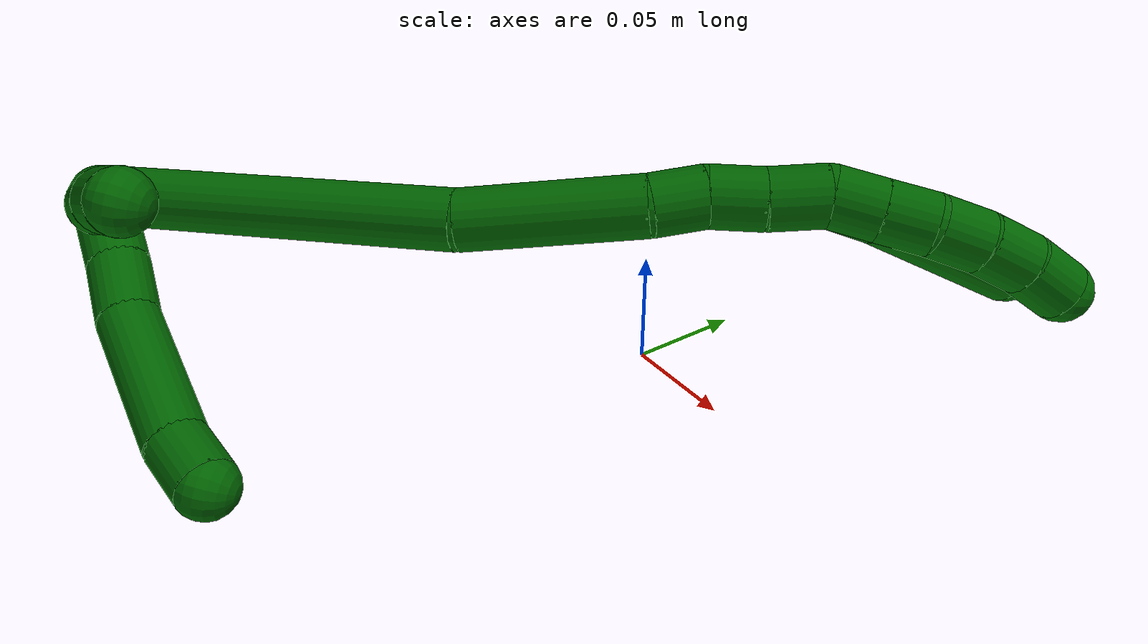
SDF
<sdf version="1.7">
 <world name="default">
  <model name="6">
   <static>0</static>
   <link name="6">
    <collision name="collision-cylinder-e_1_2_8">
     <pose>-0.000936 -0.014423 0.010518 0.940723 -0.052394 -0.026643</pose>
     <geometry><cylinder><radius>0.0125</radius><length>0.03575</length></cylinder></geometry>
     <surface>
      <friction><ode><mu>1.16</mu><mu2>1.16</mu2><slip1>0</slip1><slip2>0</slip2></ode></friction>
      <contact><ode><kp>1e+06</kp><kd>1</kd><max_vel>0</max_vel><min_depth>0.001</min_depth></ode></contact>
     </surface>
    </collision>
    <visual name="visual-cylinder-e_1_2_8">
     <pose>-0.000936 -0.014423 0.010518 0.940723 -0.052394 -0.026643</pose>
     <geometry><cylinder><radius>0.0125</radius><length>0.03575</length></cylinder></geometry>
     <material><ambient>0 0.392157 0.003922 1</ambient></material>
    </visual>
    <collision name="collision-cylinder-e_2_8_9">
     <pose>-0.003807 -0.040102 0.02871 0.972373 -0.141082 -0.074651</pose>
     <geometry><cylinder><radius>0.0125</radius><length>0.02752</length></cylinder></geometry>
     <surface>
      <friction><ode><mu>1.16</mu><mu2>1.16</mu2><slip1>0</slip1><slip2>0</slip2></ode></friction>
      <contact><ode><kp>1e+06</kp><kd>1</kd><max_vel>0</max_vel><min_depth>0.001</min_depth></ode></contact>
     </surface>
    </collision>
    <visual name="visual-cylinder-e_2_8_9">
     <pose>-0.003807 -0.040102 0.02871 0.972373 -0.141082 -0.074651</pose>
     <geometry><cylinder><radius>0.0125</radius><length>0.02752</length></cylinder></geometry>
     <material><ambient>0 0.392157 0.003922 1</ambient></material>
    </visual>
    <collision name="collision-cylinder-e_3_9_10">
     <pose>-0.012258 -0.073803 0.05725 0.821862 -0.209515 -0.091565</pose>
     <geometry><cylinder><radius>0.0125</radius><length>0.062663</length></cylinder></geometry>
     <surface>
      <friction><ode><mu>1.16</mu><mu2>1.16</mu2><slip1>0</slip1><slip2>0</slip2></ode></friction>
      <contact><ode><kp>1e+06</kp><kd>1</kd><max_vel>0</max_vel><min_depth>0.001</min_depth></ode></contact>
     </surface>
    </collision>
    <visual name="visual-cylinder-e_3_9_10">
     <pose>-0.012258 -0.073803 0.05725 0.821862 -0.209515 -0.091565</pose>
     <geometry><cylinder><radius>0.0125</radius><length>0.062663</length></cylinder></geometry>
     <material><ambient>0 0.392157 0.003922 1</ambient></material>
    </visual>
    <collision name="collision-cylinder-e_4_10_6">
     <pose>-0.022521 -0.102942 0.087389 0.625154 -0.316585 -0.103083</pose>
     <geometry><cylinder><radius>0.0125</radius><length>0.024067</length></cylinder></geometry>
     <surface>
      <friction><ode><mu>1.16</mu><mu2>1.16</mu2><slip1>0</slip1><slip2>0</slip2></ode></friction>
      <contact><ode><kp>1e+06</kp><kd>1</kd><max_vel>0</max_vel><min_depth>0.001</min_depth></ode></contact>
     </surface>
    </collision>
    <visual name="visual-cylinder-e_4_10_6">
     <pose>-0.022521 -0.102942 0.087389 0.625154 -0.316585 -0.103083</pose>
     <geometry><cylinder><radius>0.0125</radius><length>0.024067</length></cylinder></geometry>
     <material><ambient>0 0.392157 0.003922 1</ambient></material>
    </visual>
    <collision name="collision-cylinder-e_1_2_11">
     <pose>-0.008622 -0.00592 0.004622 0.907923 -0.854211 -0.437061</pose>
     <geometry><cylinder><radius>0.0125</radius><length>0.022869</length></cylinder></geometry>
     <surface>
      <friction><ode><mu>1.16</mu><mu2>1.16</mu2><slip1>0</slip1><slip2>0</slip2></ode></friction>
      <contact><ode><kp>1e+06</kp><kd>1</kd><max_vel>0</max_vel><min_depth>0.001</min_depth></ode></contact>
     </surface>
    </collision>
    <visual name="visual-cylinder-e_1_2_11">
     <pose>-0.008622 -0.00592 0.004622 0.907923 -0.854211 -0.437061</pose>
     <geometry><cylinder><radius>0.0125</radius><length>0.022869</length></cylinder></geometry>
     <material><ambient>0 0.392157 0.003922 1</ambient></material>
    </visual>
    <collision name="collision-cylinder-e_2_11_12">
     <pose>-0.03842 -0.01986 0.021101 0.594692 -0.976339 -0.322625</pose>
     <geometry><cylinder><radius>0.0125</radius><length>0.051119</length></cylinder></geometry>
     <surface>
      <friction><ode><mu>1.16</mu><mu2>1.16</mu2><slip1>0</slip1><slip2>0</slip2></ode></friction>
      <contact><ode><kp>1e+06</kp><kd>1</kd><max_vel>0</max_vel><min_depth>0.001</min_depth></ode></contact>
     </surface>
    </collision>
    <visual name="visual-cylinder-e_2_11_12">
     <pose>-0.03842 -0.01986 0.021101 0.594692 -0.976339 -0.322625</pose>
     <geometry><cylinder><radius>0.0125</radius><length>0.051119</length></cylinder></geometry>
     <material><ambient>0 0.392157 0.003922 1</ambient></material>
    </visual>
    <collision name="collision-cylinder-e_3_12_5">
     <pose>-0.069612 -0.031855 0.040238 0.499827 -0.879205 -0.238942</pose>
     <geometry><cylinder><radius>0.0125</radius><length>0.026012</length></cylinder></geometry>
     <surface>
      <friction><ode><mu>1.16</mu><mu2>1.16</mu2><slip1>0</slip1><slip2>0</slip2></ode></friction>
      <contact><ode><kp>1e+06</kp><kd>1</kd><max_vel>0</max_vel><min_depth>0.001</min_depth></ode></contact>
     </surface>
    </collision>
    <visual name="visual-cylinder-e_3_12_5">
     <pose>-0.069612 -0.031855 0.040238 0.499827 -0.879205 -0.238942</pose>
     <geometry><cylinder><radius>0.0125</radius><length>0.026012</length></cylinder></geometry>
     <material><ambient>0 0.392157 0.003922 1</ambient></material>
    </visual>
    <collision name="collision-cylinder-e_1_2_13">
     <pose>-0.019462 0.005731 0.076115 -0.075154 -0.249648 0.009434</pose>
     <geometry><cylinder><radius>0.0125</radius><length>0.157544</length></cylinder></geometry>
     <surface>
      <friction><ode><mu>1.16</mu><mu2>1.16</mu2><slip1>0</slip1><slip2>0</slip2></ode></friction>
      <contact><ode><kp>1e+06</kp><kd>1</kd><max_vel>0</max_vel><min_depth>0.001</min_depth></ode></contact>
     </surface>
    </collision>
    <visual name="visual-cylinder-e_1_2_13">
     <pose>-0.019462 0.005731 0.076115 -0.075154 -0.249648 0.009434</pose>
     <geometry><cylinder><radius>0.0125</radius><length>0.157544</length></cylinder></geometry>
     <material><ambient>0 0.392157 0.003922 1</ambient></material>
    </visual>
    <collision name="collision-cylinder-e_2_13_14">
     <pose>-0.046622 0.020942 0.187295 -0.264022 -0.208835 0.027829</pose>
     <geometry><cylinder><radius>0.0125</radius><length>0.074262</length></cylinder></geometry>
     <surface>
      <friction><ode><mu>1.16</mu><mu2>1.16</mu2><slip1>0</slip1><slip2>0</slip2></ode></friction>
      <contact><ode><kp>1e+06</kp><kd>1</kd><max_vel>0</max_vel><min_depth>0.001</min_depth></ode></contact>
     </surface>
    </collision>
    <visual name="visual-cylinder-e_2_13_14">
     <pose>-0.046622 0.020942 0.187295 -0.264022 -0.208835 0.027829</pose>
     <geometry><cylinder><radius>0.0125</radius><length>0.074262</length></cylinder></geometry>
     <material><ambient>0 0.392157 0.003922 1</ambient></material>
    </visual>
    <collision name="collision-cylinder-e_3_14_15">
     <pose>-0.055401 0.034922 0.232306 -0.425038 -0.098708 0.021315</pose>
     <geometry><cylinder><radius>0.0125</radius><length>0.021939</length></cylinder></geometry>
     <surface>
      <friction><ode><mu>1.16</mu><mu2>1.16</mu2><slip1>0</slip1><slip2>0</slip2></ode></friction>
      <contact><ode><kp>1e+06</kp><kd>1</kd><max_vel>0</max_vel><min_depth>0.001</min_depth></ode></contact>
     </surface>
    </collision>
    <visual name="visual-cylinder-e_3_14_15">
     <pose>-0.055401 0.034922 0.232306 -0.425038 -0.098708 0.021315</pose>
     <geometry><cylinder><radius>0.0125</radius><length>0.021939</length></cylinder></geometry>
     <material><ambient>0 0.392157 0.003922 1</ambient></material>
    </visual>
    <collision name="collision-cylinder-e_4_15_16">
     <pose>-0.057388 0.041553 0.253177 -0.192478 -0.081267 0.00785</pose>
     <geometry><cylinder><radius>0.0125</radius><length>0.022336</length></cylinder></geometry>
     <surface>
      <friction><ode><mu>1.16</mu><mu2>1.16</mu2><slip1>0</slip1><slip2>0</slip2></ode></friction>
      <contact><ode><kp>1e+06</kp><kd>1</kd><max_vel>0</max_vel><min_depth>0.001</min_depth></ode></contact>
     </surface>
    </collision>
    <visual name="visual-cylinder-e_4_15_16">
     <pose>-0.057388 0.041553 0.253177 -0.192478 -0.081267 0.00785</pose>
     <geometry><cylinder><radius>0.0125</radius><length>0.022336</length></cylinder></geometry>
     <material><ambient>0 0.392157 0.003922 1</ambient></material>
    </visual>
    <collision name="collision-cylinder-e_5_16_1">
     <pose>-0.0599 0.047007 0.275477 -0.284362 -0.134662 0.019305</pose>
     <geometry><cylinder><radius>0.0125</radius><length>0.023918</length></cylinder></geometry>
     <surface>
      <friction><ode><mu>1.16</mu><mu2>1.16</mu2><slip1>0</slip1><slip2>0</slip2></ode></friction>
      <contact><ode><kp>1e+06</kp><kd>1</kd><max_vel>0</max_vel><min_depth>0.001</min_depth></ode></contact>
     </surface>
    </collision>
    <visual name="visual-cylinder-e_5_16_1">
     <pose>-0.0599 0.047007 0.275477 -0.284362 -0.134662 0.019305</pose>
     <geometry><cylinder><radius>0.0125</radius><length>0.023918</length></cylinder></geometry>
     <material><ambient>0 0.392157 0.003922 1</ambient></material>
    </visual>
    <collision name="collision-cylinder-e_1_1_17">
     <pose>-0.061515 0.050077 0.296848 0.02546 -0.000872 -1.1e-05</pose>
     <geometry><cylinder><radius>0.0125</radius><length>0.02</length></cylinder></geometry>
     <surface>
      <friction><ode><mu>1.16</mu><mu2>1.16</mu2><slip1>0</slip1><slip2>0</slip2></ode></friction>
      <contact><ode><kp>1e+06</kp><kd>1</kd><max_vel>0</max_vel><min_depth>0.001</min_depth></ode></contact>
     </surface>
    </collision>
    <visual name="visual-cylinder-e_1_1_17">
     <pose>-0.061515 0.050077 0.296848 0.02546 -0.000872 -1.1e-05</pose>
     <geometry><cylinder><radius>0.0125</radius><length>0.02</length></cylinder></geometry>
     <material><ambient>0 0.392157 0.003922 1</ambient></material>
    </visual>
    <collision name="collision-cylinder-e_2_17_18">
     <pose>-0.061843 0.049453 0.316833 0.036936 -0.032006 -0.000591</pose>
     <geometry><cylinder><radius>0.0125</radius><length>0.02</length></cylinder></geometry>
     <surface>
      <friction><ode><mu>1.16</mu><mu2>1.16</mu2><slip1>0</slip1><slip2>0</slip2></ode></friction>
      <contact><ode><kp>1e+06</kp><kd>1</kd><max_vel>0</max_vel><min_depth>0.001</min_depth></ode></contact>
     </surface>
    </collision>
    <visual name="visual-cylinder-e_2_17_18">
     <pose>-0.061843 0.049453 0.316833 0.036936 -0.032006 -0.000591</pose>
     <geometry><cylinder><radius>0.0125</radius><length>0.02</length></cylinder></geometry>
     <material><ambient>0 0.392157 0.003922 1</ambient></material>
    </visual>
    <collision name="collision-cylinder-e_3_18_19">
     <pose>-0.060384 0.049279 0.33666 -0.019769 0.178892 -0.001773</pose>
     <geometry><cylinder><radius>0.0125</radius><length>0.02</length></cylinder></geometry>
     <surface>
      <friction><ode><mu>1.16</mu><mu2>1.16</mu2><slip1>0</slip1><slip2>0</slip2></ode></friction>
      <contact><ode><kp>1e+06</kp><kd>1</kd><max_vel>0</max_vel><min_depth>0.001</min_depth></ode></contact>
     </surface>
    </collision>
    <visual name="visual-cylinder-e_3_18_19">
     <pose>-0.060384 0.049279 0.33666 -0.019769 0.178892 -0.001773</pose>
     <geometry><cylinder><radius>0.0125</radius><length>0.02</length></cylinder></geometry>
     <material><ambient>0 0.392157 0.003922 1</ambient></material>
    </visual>
    <collision name="collision-cylinder-e_4_19_20">
     <pose>-0.055603 0.049128 0.356031 0.036247 0.304847 0.005569</pose>
     <geometry><cylinder><radius>0.0125</radius><length>0.02</length></cylinder></geometry>
     <surface>
      <friction><ode><mu>1.16</mu><mu2>1.16</mu2><slip1>0</slip1><slip2>0</slip2></ode></friction>
      <contact><ode><kp>1e+06</kp><kd>1</kd><max_vel>0</max_vel><min_depth>0.001</min_depth></ode></contact>
     </surface>
    </collision>
    <visual name="visual-cylinder-e_4_19_20">
     <pose>-0.055603 0.049128 0.356031 0.036247 0.304847 0.005569</pose>
     <geometry><cylinder><radius>0.0125</radius><length>0.02</length></cylinder></geometry>
     <material><ambient>0 0.392157 0.003922 1</ambient></material>
    </visual>
    <collision name="collision-cylinder-e_5_20_4">
     <pose>-0.04832 0.047685 0.374534 0.121661 0.442408 0.027392</pose>
     <geometry><cylinder><radius>0.0125</radius><length>0.02</length></cylinder></geometry>
     <surface>
      <friction><ode><mu>1.16</mu><mu2>1.16</mu2><slip1>0</slip1><slip2>0</slip2></ode></friction>
      <contact><ode><kp>1e+06</kp><kd>1</kd><max_vel>0</max_vel><min_depth>0.001</min_depth></ode></contact>
     </surface>
    </collision>
    <visual name="visual-cylinder-e_5_20_4">
     <pose>-0.04832 0.047685 0.374534 0.121661 0.442408 0.027392</pose>
     <geometry><cylinder><radius>0.0125</radius><length>0.02</length></cylinder></geometry>
     <material><ambient>0 0.392157 0.003922 1</ambient></material>
    </visual>
    <collision name="collision-cylinder-e_1_1_21">
     <pose>-0.055694 0.053151 0.297267 -0.264366 0.494059 -0.067034</pose>
     <geometry><cylinder><radius>0.0125</radius><length>0.024513</length></cylinder></geometry>
     <surface>
      <friction><ode><mu>1.16</mu><mu2>1.16</mu2><slip1>0</slip1><slip2>0</slip2></ode></friction>
      <contact><ode><kp>1e+06</kp><kd>1</kd><max_vel>0</max_vel><min_depth>0.001</min_depth></ode></contact>
     </surface>
    </collision>
    <visual name="visual-cylinder-e_1_1_21">
     <pose>-0.055694 0.053151 0.297267 -0.264366 0.494059 -0.067034</pose>
     <geometry><cylinder><radius>0.0125</radius><length>0.024513</length></cylinder></geometry>
     <material><ambient>0 0.392157 0.003922 1</ambient></material>
    </visual>
    <collision name="collision-cylinder-e_2_21_3">
     <pose>-0.031814 0.061466 0.340363 -0.166591 0.499167 -0.042556</pose>
     <geometry><cylinder><radius>0.0125</radius><length>0.075487</length></cylinder></geometry>
     <surface>
      <friction><ode><mu>1.16</mu><mu2>1.16</mu2><slip1>0</slip1><slip2>0</slip2></ode></friction>
      <contact><ode><kp>1e+06</kp><kd>1</kd><max_vel>0</max_vel><min_depth>0.001</min_depth></ode></contact>
     </surface>
    </collision>
    <visual name="visual-cylinder-e_2_21_3">
     <pose>-0.031814 0.061466 0.340363 -0.166591 0.499167 -0.042556</pose>
     <geometry><cylinder><radius>0.0125</radius><length>0.075487</length></cylinder></geometry>
     <material><ambient>0 0.392157 0.003922 1</ambient></material>
    </visual>
    <collision name="collision-sphere-3">
     <pose>-0.013747 0.066961 0.373042 0 -0 0</pose>
     <geometry><sphere><radius>0.0125</radius></sphere></geometry>
     <surface>
      <friction><ode><mu>1.16</mu><mu2>1.16</mu2><slip1>0</slip1><slip2>0</slip2></ode></friction>
      <contact><ode><kp>1e+06</kp><kd>1</kd><max_vel>0</max_vel><min_depth>0.001</min_depth></ode></contact>
     </surface>
    </collision>
    <visual name="visual-sphere-3">
     <pose>-0.013747 0.066961 0.373042 0 -0 0</pose>
     <geometry><sphere><radius>0.0125</radius></sphere></geometry>
     <material><ambient>0 0.392157 0.003922 1</ambient></material>
    </visual>
    <collision name="collision-sphere-21">
     <pose>-0.049882 0.055971 0.307683 0 -0 0</pose>
     <geometry><sphere><radius>0.0125</radius></sphere></geometry>
     <surface>
      <friction><ode><mu>1.16</mu><mu2>1.16</mu2><slip1>0</slip1><slip2>0</slip2></ode></friction>
      <contact><ode><kp>1e+06</kp><kd>1</kd><max_vel>0</max_vel><min_depth>0.001</min_depth></ode></contact>
     </surface>
    </collision>
    <visual name="visual-sphere-21">
     <pose>-0.049882 0.055971 0.307683 0 -0 0</pose>
     <geometry><sphere><radius>0.0125</radius></sphere></geometry>
     <material><ambient>0 0.392157 0.003922 1</ambient></material>
    </visual>
    <collision name="collision-sphere-4">
     <pose>-0.044039 0.046589 0.383504 0 -0 0</pose>
     <geometry><sphere><radius>0.0125</radius></sphere></geometry>
     <surface>
      <friction><ode><mu>1.16</mu><mu2>1.16</mu2><slip1>0</slip1><slip2>0</slip2></ode></friction>
      <contact><ode><kp>1e+06</kp><kd>1</kd><max_vel>0</max_vel><min_depth>0.001</min_depth></ode></contact>
     </surface>
    </collision>
    <visual name="visual-sphere-4">
     <pose>-0.044039 0.046589 0.383504 0 -0 0</pose>
     <geometry><sphere><radius>0.0125</radius></sphere></geometry>
     <material><ambient>0 0.392157 0.003922 1</ambient></material>
    </visual>
    <collision name="collision-sphere-20">
     <pose>-0.052602 0.048782 0.365564 0 -0 0</pose>
     <geometry><sphere><radius>0.0125</radius></sphere></geometry>
     <surface>
      <friction><ode><mu>1.16</mu><mu2>1.16</mu2><slip1>0</slip1><slip2>0</slip2></ode></friction>
      <contact><ode><kp>1e+06</kp><kd>1</kd><max_vel>0</max_vel><min_depth>0.001</min_depth></ode></contact>
     </surface>
    </collision>
    <visual name="visual-sphere-20">
     <pose>-0.052602 0.048782 0.365564 0 -0 0</pose>
     <geometry><sphere><radius>0.0125</radius></sphere></geometry>
     <material><ambient>0 0.392157 0.003922 1</ambient></material>
    </visual>
    <collision name="collision-sphere-11">
     <pose>-0.017245 -0.01184 0.009244 0 -0 0</pose>
     <geometry><sphere><radius>0.0125</radius></sphere></geometry>
     <surface>
      <friction><ode><mu>1.16</mu><mu2>1.16</mu2><slip1>0</slip1><slip2>0</slip2></ode></friction>
      <contact><ode><kp>1e+06</kp><kd>1</kd><max_vel>0</max_vel><min_depth>0.001</min_depth></ode></contact>
     </surface>
    </collision>
    <visual name="visual-sphere-11">
     <pose>-0.017245 -0.01184 0.009244 0 -0 0</pose>
     <geometry><sphere><radius>0.0125</radius></sphere></geometry>
     <material><ambient>0 0.392157 0.003922 1</ambient></material>
    </visual>
    <collision name="collision-sphere-6">
     <pose>-0.026268 -0.109634 0.096661 0 -0 0</pose>
     <geometry><sphere><radius>0.0125</radius></sphere></geometry>
     <surface>
      <friction><ode><mu>1.16</mu><mu2>1.16</mu2><slip1>0</slip1><slip2>0</slip2></ode></friction>
      <contact><ode><kp>1e+06</kp><kd>1</kd><max_vel>0</max_vel><min_depth>0.001</min_depth></ode></contact>
     </surface>
    </collision>
    <visual name="visual-sphere-6">
     <pose>-0.026268 -0.109634 0.096661 0 -0 0</pose>
     <geometry><sphere><radius>0.0125</radius></sphere></geometry>
     <material><ambient>0 0.392157 0.003922 1</ambient></material>
    </visual>
    <collision name="collision-sphere-10">
     <pose>-0.018775 -0.096249 0.078116 0 -0 0</pose>
     <geometry><sphere><radius>0.0125</radius></sphere></geometry>
     <surface>
      <friction><ode><mu>1.16</mu><mu2>1.16</mu2><slip1>0</slip1><slip2>0</slip2></ode></friction>
      <contact><ode><kp>1e+06</kp><kd>1</kd><max_vel>0</max_vel><min_depth>0.001</min_depth></ode></contact>
     </surface>
    </collision>
    <visual name="visual-sphere-10">
     <pose>-0.018775 -0.096249 0.078116 0 -0 0</pose>
     <geometry><sphere><radius>0.0125</radius></sphere></geometry>
     <material><ambient>0 0.392157 0.003922 1</ambient></material>
    </visual>
    <collision name="collision-sphere-9">
     <pose>-0.005742 -0.051357 0.036384 0 -0 0</pose>
     <geometry><sphere><radius>0.0125</radius></sphere></geometry>
     <surface>
      <friction><ode><mu>1.16</mu><mu2>1.16</mu2><slip1>0</slip1><slip2>0</slip2></ode></friction>
      <contact><ode><kp>1e+06</kp><kd>1</kd><max_vel>0</max_vel><min_depth>0.001</min_depth></ode></contact>
     </surface>
    </collision>
    <visual name="visual-sphere-9">
     <pose>-0.005742 -0.051357 0.036384 0 -0 0</pose>
     <geometry><sphere><radius>0.0125</radius></sphere></geometry>
     <material><ambient>0 0.392157 0.003922 1</ambient></material>
    </visual>
    <collision name="collision-sphere-2">
     <geometry><sphere><radius>0.0125</radius></sphere></geometry>
     <surface>
      <friction><ode><mu>1.16</mu><mu2>1.16</mu2><slip1>0</slip1><slip2>0</slip2></ode></friction>
      <contact><ode><kp>1e+06</kp><kd>1</kd><max_vel>0</max_vel><min_depth>0.001</min_depth></ode></contact>
     </surface>
    </collision>
    <visual name="visual-sphere-2">
     <geometry><sphere><radius>0.0125</radius></sphere></geometry>
     <material><ambient>0 0.392157 0.003922 1</ambient></material>
    </visual>
    <collision name="collision-sphere-19">
     <pose>-0.058605 0.049473 0.346498 0 -0 0</pose>
     <geometry><sphere><radius>0.0125</radius></sphere></geometry>
     <surface>
      <friction><ode><mu>1.16</mu><mu2>1.16</mu2><slip1>0</slip1><slip2>0</slip2></ode></friction>
      <contact><ode><kp>1e+06</kp><kd>1</kd><max_vel>0</max_vel><min_depth>0.001</min_depth></ode></contact>
     </surface>
    </collision>
    <visual name="visual-sphere-19">
     <pose>-0.058605 0.049473 0.346498 0 -0 0</pose>
     <geometry><sphere><radius>0.0125</radius></sphere></geometry>
     <material><ambient>0 0.392157 0.003922 1</ambient></material>
    </visual>
    <collision name="collision-sphere-8">
     <pose>-0.001872 -0.028846 0.021035 0 -0 0</pose>
     <geometry><sphere><radius>0.0125</radius></sphere></geometry>
     <surface>
      <friction><ode><mu>1.16</mu><mu2>1.16</mu2><slip1>0</slip1><slip2>0</slip2></ode></friction>
      <contact><ode><kp>1e+06</kp><kd>1</kd><max_vel>0</max_vel><min_depth>0.001</min_depth></ode></contact>
     </surface>
    </collision>
    <visual name="visual-sphere-8">
     <pose>-0.001872 -0.028846 0.021035 0 -0 0</pose>
     <geometry><sphere><radius>0.0125</radius></sphere></geometry>
     <material><ambient>0 0.392157 0.003922 1</ambient></material>
    </visual>
    <collision name="collision-sphere-12">
     <pose>-0.059594 -0.02788 0.032958 0 -0 0</pose>
     <geometry><sphere><radius>0.0125</radius></sphere></geometry>
     <surface>
      <friction><ode><mu>1.16</mu><mu2>1.16</mu2><slip1>0</slip1><slip2>0</slip2></ode></friction>
      <contact><ode><kp>1e+06</kp><kd>1</kd><max_vel>0</max_vel><min_depth>0.001</min_depth></ode></contact>
     </surface>
    </collision>
    <visual name="visual-sphere-12">
     <pose>-0.059594 -0.02788 0.032958 0 -0 0</pose>
     <geometry><sphere><radius>0.0125</radius></sphere></geometry>
     <material><ambient>0 0.392157 0.003922 1</ambient></material>
    </visual>
    <collision name="collision-sphere-5">
     <pose>-0.079629 -0.035831 0.047518 0 -0 0</pose>
     <geometry><sphere><radius>0.0125</radius></sphere></geometry>
     <surface>
      <friction><ode><mu>1.16</mu><mu2>1.16</mu2><slip1>0</slip1><slip2>0</slip2></ode></friction>
      <contact><ode><kp>1e+06</kp><kd>1</kd><max_vel>0</max_vel><min_depth>0.001</min_depth></ode></contact>
     </surface>
    </collision>
    <visual name="visual-sphere-5">
     <pose>-0.079629 -0.035831 0.047518 0 -0 0</pose>
     <geometry><sphere><radius>0.0125</radius></sphere></geometry>
     <material><ambient>0 0.392157 0.003922 1</ambient></material>
    </visual>
    <collision name="collision-sphere-13">
     <pose>-0.038923 0.011462 0.15223 0 -0 0</pose>
     <geometry><sphere><radius>0.0125</radius></sphere></geometry>
     <surface>
      <friction><ode><mu>1.16</mu><mu2>1.16</mu2><slip1>0</slip1><slip2>0</slip2></ode></friction>
      <contact><ode><kp>1e+06</kp><kd>1</kd><max_vel>0</max_vel><min_depth>0.001</min_depth></ode></contact>
     </surface>
    </collision>
    <visual name="visual-sphere-13">
     <pose>-0.038923 0.011462 0.15223 0 -0 0</pose>
     <geometry><sphere><radius>0.0125</radius></sphere></geometry>
     <material><ambient>0 0.392157 0.003922 1</ambient></material>
    </visual>
    <collision name="collision-sphere-14">
     <pose>-0.05432 0.030421 0.222361 0 -0 0</pose>
     <geometry><sphere><radius>0.0125</radius></sphere></geometry>
     <surface>
      <friction><ode><mu>1.16</mu><mu2>1.16</mu2><slip1>0</slip1><slip2>0</slip2></ode></friction>
      <contact><ode><kp>1e+06</kp><kd>1</kd><max_vel>0</max_vel><min_depth>0.001</min_depth></ode></contact>
     </surface>
    </collision>
    <visual name="visual-sphere-14">
     <pose>-0.05432 0.030421 0.222361 0 -0 0</pose>
     <geometry><sphere><radius>0.0125</radius></sphere></geometry>
     <material><ambient>0 0.392157 0.003922 1</ambient></material>
    </visual>
    <collision name="collision-sphere-15">
     <pose>-0.056482 0.039424 0.242251 0 -0 0</pose>
     <geometry><sphere><radius>0.0125</radius></sphere></geometry>
     <surface>
      <friction><ode><mu>1.16</mu><mu2>1.16</mu2><slip1>0</slip1><slip2>0</slip2></ode></friction>
      <contact><ode><kp>1e+06</kp><kd>1</kd><max_vel>0</max_vel><min_depth>0.001</min_depth></ode></contact>
     </surface>
    </collision>
    <visual name="visual-sphere-15">
     <pose>-0.056482 0.039424 0.242251 0 -0 0</pose>
     <geometry><sphere><radius>0.0125</radius></sphere></geometry>
     <material><ambient>0 0.392157 0.003922 1</ambient></material>
    </visual>
    <collision name="collision-sphere-16">
     <pose>-0.058295 0.043682 0.264102 0 -0 0</pose>
     <geometry><sphere><radius>0.0125</radius></sphere></geometry>
     <surface>
      <friction><ode><mu>1.16</mu><mu2>1.16</mu2><slip1>0</slip1><slip2>0</slip2></ode></friction>
      <contact><ode><kp>1e+06</kp><kd>1</kd><max_vel>0</max_vel><min_depth>0.001</min_depth></ode></contact>
     </surface>
    </collision>
    <visual name="visual-sphere-16">
     <pose>-0.058295 0.043682 0.264102 0 -0 0</pose>
     <geometry><sphere><radius>0.0125</radius></sphere></geometry>
     <material><ambient>0 0.392157 0.003922 1</ambient></material>
    </visual>
    <collision name="collision-sphere-1">
     <pose>-0.061506 0.050332 0.286852 0 -0 0</pose>
     <geometry><sphere><radius>0.0125</radius></sphere></geometry>
     <surface>
      <friction><ode><mu>1.16</mu><mu2>1.16</mu2><slip1>0</slip1><slip2>0</slip2></ode></friction>
      <contact><ode><kp>1e+06</kp><kd>1</kd><max_vel>0</max_vel><min_depth>0.001</min_depth></ode></contact>
     </surface>
    </collision>
    <visual name="visual-sphere-1">
     <pose>-0.061506 0.050332 0.286852 0 -0 0</pose>
     <geometry><sphere><radius>0.0125</radius></sphere></geometry>
     <material><ambient>0 0.392157 0.003922 1</ambient></material>
    </visual>
    <collision name="collision-sphere-18">
     <pose>-0.062163 0.049084 0.326821 0 -0 0</pose>
     <geometry><sphere><radius>0.0125</radius></sphere></geometry>
     <surface>
      <friction><ode><mu>1.16</mu><mu2>1.16</mu2><slip1>0</slip1><slip2>0</slip2></ode></friction>
      <contact><ode><kp>1e+06</kp><kd>1</kd><max_vel>0</max_vel><min_depth>0.001</min_depth></ode></contact>
     </surface>
    </collision>
    <visual name="visual-sphere-18">
     <pose>-0.062163 0.049084 0.326821 0 -0 0</pose>
     <geometry><sphere><radius>0.0125</radius></sphere></geometry>
     <material><ambient>0 0.392157 0.003922 1</ambient></material>
    </visual>
    <collision name="collision-sphere-17">
     <pose>-0.061523 0.049823 0.306845 0 -0 0</pose>
     <geometry><sphere><radius>0.0125</radius></sphere></geometry>
     <surface>
      <friction><ode><mu>1.16</mu><mu2>1.16</mu2><slip1>0</slip1><slip2>0</slip2></ode></friction>
      <contact><ode><kp>1e+06</kp><kd>1</kd><max_vel>0</max_vel><min_depth>0.001</min_depth></ode></contact>
     </surface>
    </collision>
    <visual name="visual-sphere-17">
     <pose>-0.061523 0.049823 0.306845 0 -0 0</pose>
     <geometry><sphere><radius>0.0125</radius></sphere></geometry>
     <material><ambient>0 0.392157 0.003922 1</ambient></material>
    </visual>
    <inertial>
     <pose>-0.033865 0.007242 0.158569 0 -0 0</pose>
     <mass>0.75</mass>
     <inertia>
      <ixx>0.000437</ixx>
      <ixy>0</ixy>
      <ixz>0</ixz>
      <iyy>0.000449</iyy>
      <iyz>0</iyz>
      <izz>0.000127</izz>
     </inertia>
    </inertial>
   </link>
   <pose>-0.130901 -0.188286 0.079993 1.9328 0.985576 2.67058</pose>
  </model>
 </world>
</sdf>
